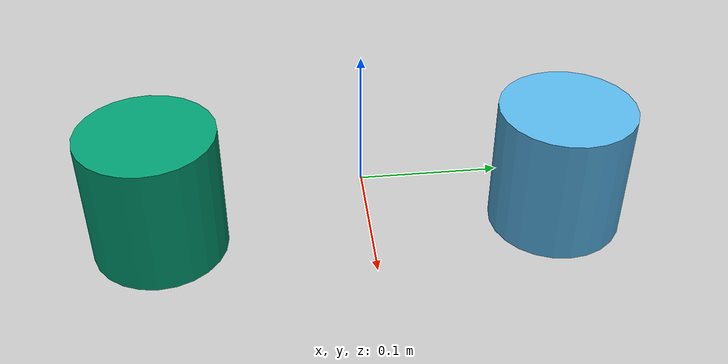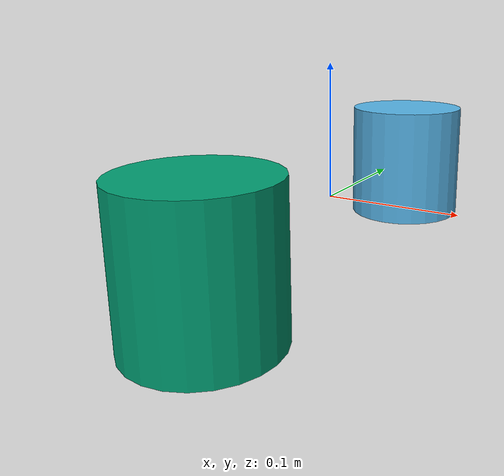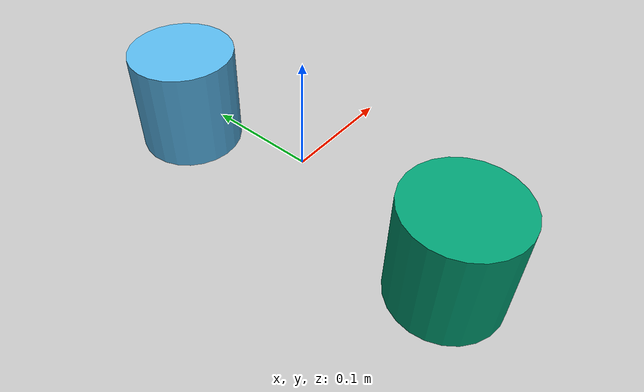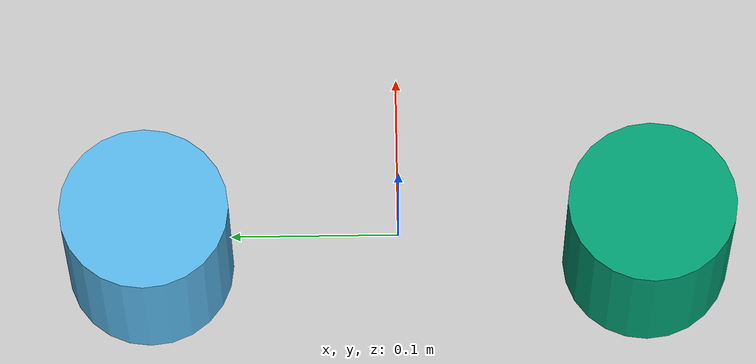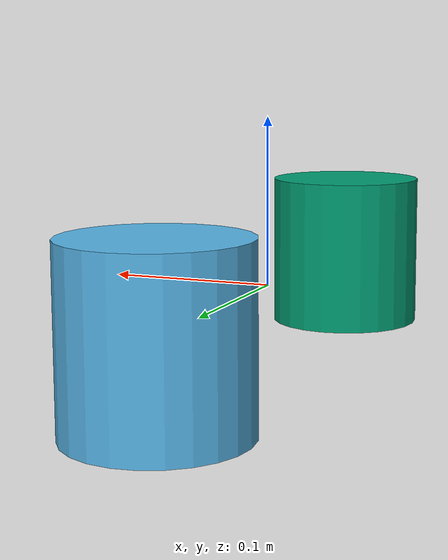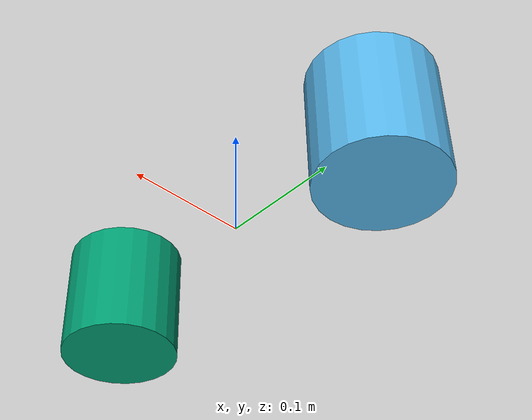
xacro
<?xml version="1.0"?>
<robot xmlns:xacro="http://www.ros.org/wiki/xacro" name="x6_test">
  <xacro:arg name="pkg_share" default=""/>

  <!-- Two motor setup -->
  <link name="world"/>

  <!-- Motor 0 (slave position 0) -->
  <link name="motor0_link">
    <visual>
      <geometry>
        <cylinder radius="0.05" length="0.1"/>
      </geometry>
      <origin xyz="0 0 0" rpy="0 0 0"/>
    </visual>
  </link>

  <joint name="motor0_joint" type="revolute">
    <parent link="world"/>
    <child link="motor0_link"/>
    <origin xyz="0 0.15 0" rpy="0 0 0"/>
    <axis xyz="0 0 1"/>
    <!-- Hard safety limits: ±90° nominal, ±95° absolute for recovery -->
    <limit lower="-1.658" upper="1.658" velocity="16.0" effort="3.0"/>
  </joint>

  <!-- Motor 1 (slave position 1) -->
  <link name="motor1_link">
    <visual>
      <geometry>
        <cylinder radius="0.05" length="0.1"/>
      </geometry>
      <origin xyz="0 0 0" rpy="0 0 0"/>
    </visual>
  </link>

  <joint name="motor1_joint" type="revolute">
    <parent link="world"/>
    <child link="motor1_link"/>
    <origin xyz="0 -0.15 0" rpy="0 0 0"/>
    <axis xyz="0 0 1"/>
    <!-- Hard safety limits: ±90° nominal, ±95° absolute for recovery -->
    <limit lower="-1.658" upper="1.658" velocity="16.0" effort="3.0"/>
  </joint>

  <!-- ros2_control configuration -->
  <ros2_control name="EthercatSystem" type="system">
    <hardware>
      <plugin>ethercat_driver/EthercatDriver</plugin>
      <param name="master_id">0</param>
      <param name="control_frequency">100</param>
    </hardware>

    <!-- Motor 0 - EtherCAT slave position 0 (new motor, first in chain) -->
    <joint name="motor0_joint">
      <command_interface name="velocity"/>
      <command_interface name="position"/>
      <command_interface name="effort"/>
      <state_interface name="position"/>
      <state_interface name="velocity"/>
      <state_interface name="effort"/>
      <ec_module name="MyActuatorX6_0">
        <plugin>ethercat_generic_plugins/EcCiA402Drive</plugin>
        <param name="alias">0</param>
        <param name="position">0</param>
        <param name="slave_config">$(arg pkg_share)/config/myactuator_x6.yaml</param>
        <param name="mode_of_operation">8</param>  <!-- CSP mode for position control -->
      </ec_module>
    </joint>

    <!-- Motor 1 - EtherCAT slave position 1 (original working motor, second in chain) -->
    <joint name="motor1_joint">
      <command_interface name="velocity"/>
      <command_interface name="position"/>
      <command_interface name="effort"/>
      <state_interface name="position"/>
      <state_interface name="velocity"/>
      <state_interface name="effort"/>
      <ec_module name="MyActuatorX6_1">
        <plugin>ethercat_generic_plugins/EcCiA402Drive</plugin>
        <param name="alias">0</param>
        <param name="position">1</param>
        <param name="slave_config">$(arg pkg_share)/config/myactuator_x6.yaml</param>
        <param name="mode_of_operation">8</param>  <!-- CSP mode for position control -->
      </ec_module>
    </joint>
  </ros2_control>

</robot>
